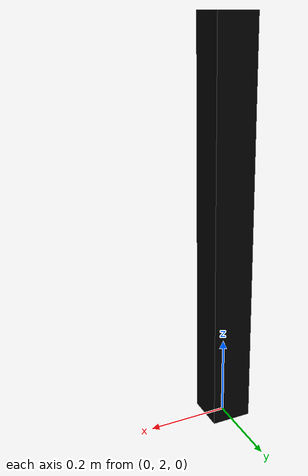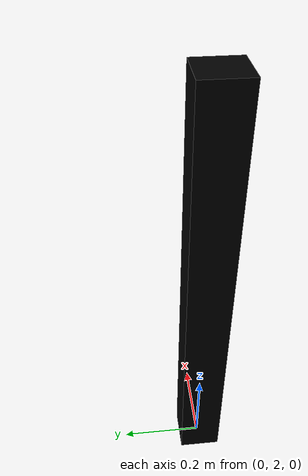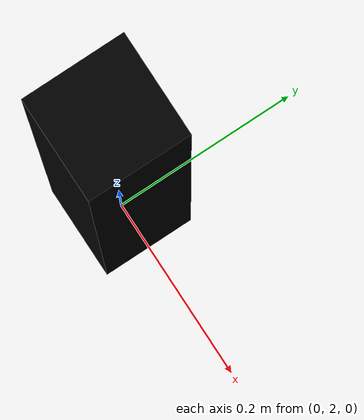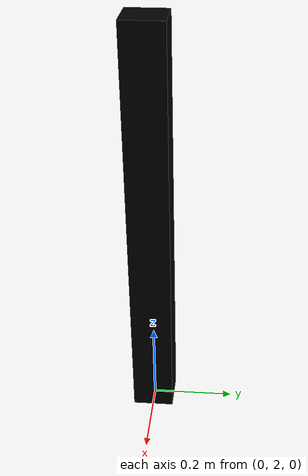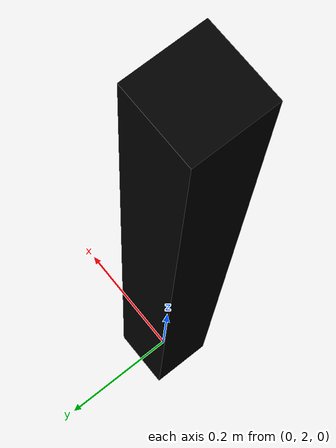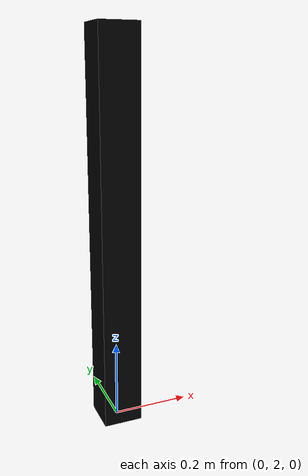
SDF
<?xml version="1.0" ?>
<sdf version="1.4">
  <world name="default">
    <gui>
        <camera name="user_camera">
            <pose>0.0 -1.6 1.0 0.0 0.275 1.57</pose>
        </camera>
    </gui>

    <model name="box">
      <pose>0 2 0.5 0 0 0</pose>
      <link name="link">
        <kinematic>true</kinematic>
        <collision name="collision">
          <geometry>
            <box>
              <size>0.1 0.1 0.1</size>
            </box>
          </geometry>
          <surface>
            <friction>
              <ode>
                <mu>0.0</mu>
                <mu2>0.0</mu2>
              </ode>
            </friction>
          </surface>
        </collision>
        <visual name="visual">
          <geometry>
            <box>
              <size>0.1 0.1 1.0</size>
            </box>
          </geometry>
          <material>
              <ambient>0.0 0.0 0.0 1</ambient>
              <diffuse>0.0 0.0 0.0 1</diffuse>
              <specular>0 0 0 1</specular>
              <emissive>0 0 0 1</emissive>
          </material>
        </visual>
      </link>

      <!-- Apply a random velocity to the specified link-->
      <!-- In this example, we move a box around. A key property of the link
           is the frictionless surface -->
      <plugin name="random" filename="librandom_velocity_plugin2.so">

        <!-- Name of the link in this model that receives the velocity -->
        <link>link</link>

        <!-- Initial velocity that is applied to the link -->
        <initial_velocity>0 0.5 0</initial_velocity>

        <!-- Scaling factor that is used to compute a new velocity -->
        <velocity_factor>0.5</velocity_factor>

        <!-- Time, in seconds, between new velocities -->
        <update_period>2.5</update_period>

        <!-- Clamp the Z velocity value to zero. You can also clamp x and
             y values -->
        <min_z>0</min_z>
        <max_z>0</max_z>

        <!-- Clamp object position-->
        <min_x_pos>-2</min_x_pos>
        <max_x_pos>2</max_x_pos>
        <min_y_pos>1</min_y_pos>
        <max_y_pos>3</max_y_pos>
        <min_z_pos>-0.1</min_z_pos>
        <max_z_pos>1</max_z_pos>
      </plugin>
    </model>

   <physics type='ode'>
       <max_step_size>0.001</max_step_size>
       <real_time_factor>1.0</real_time_factor>
       <real_time_update_rate>1000</real_time_update_rate>
       <gravity>0 0 -9.8</gravity>
    </physics>
    <scene>
	    <shadows>false</shadows>
	    <ambient>200.0 200.0 200.0 128.0</ambient>
    </scene>
  </world>
</sdf>
